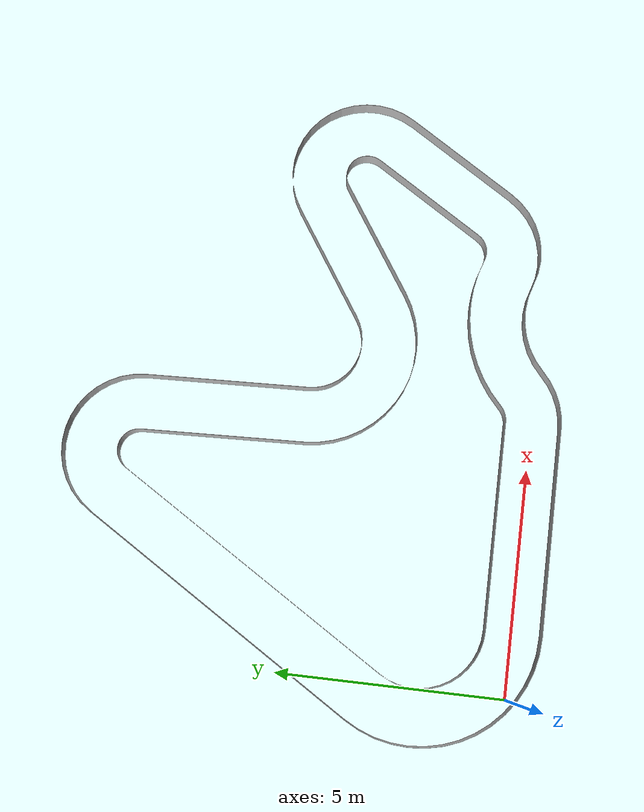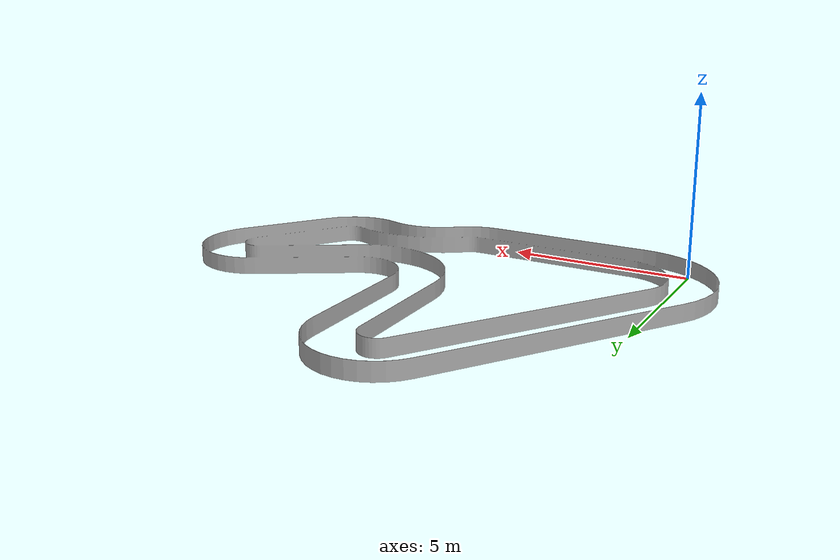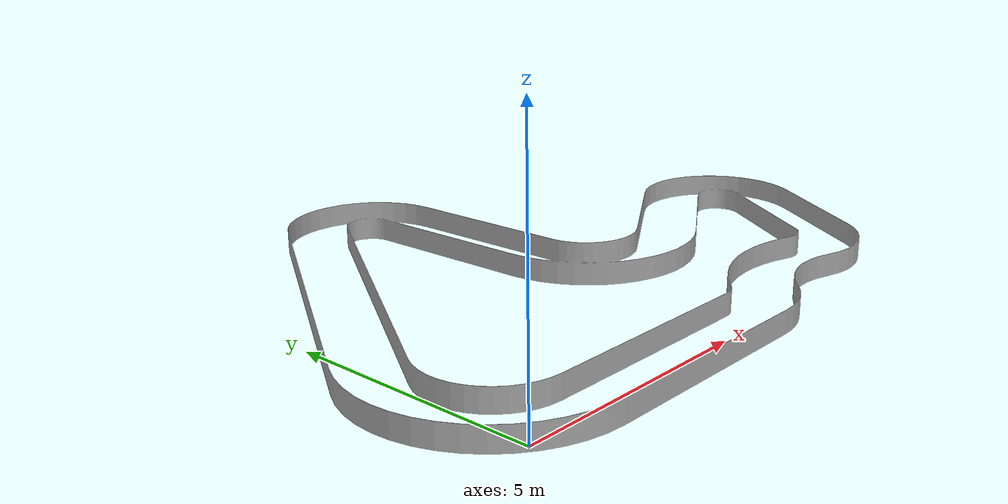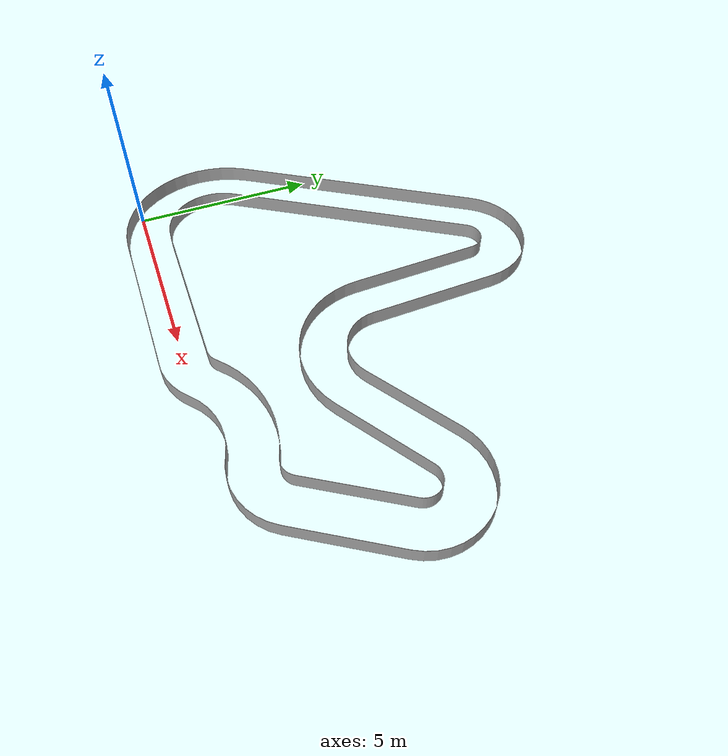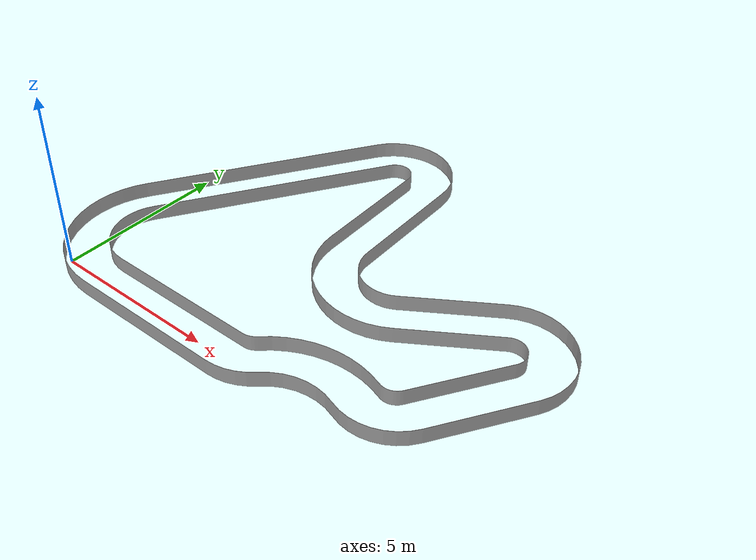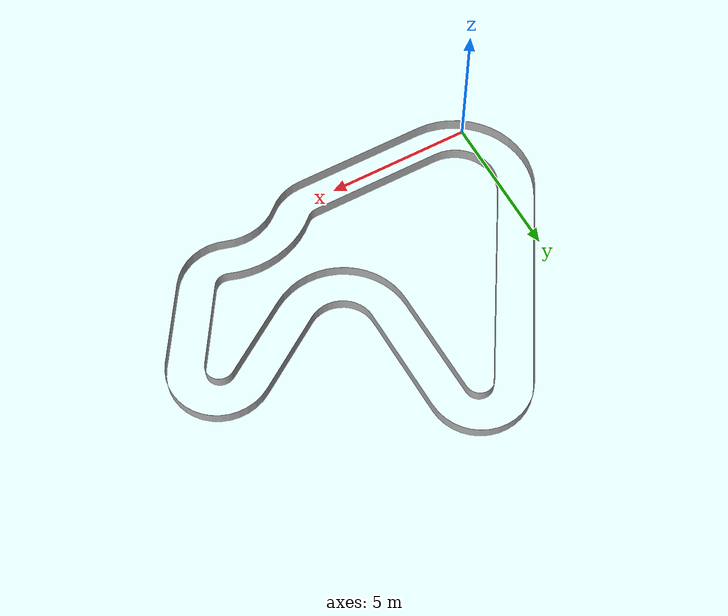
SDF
<?xml version='1.0'?>
<sdf version='1.4'>
  <model name="arroyo_track">
    <link name="link">
      <collision name="collision">
        <geometry>
          <mesh>
            <uri>model://racecar_description/meshes/arroyo_track.dae</uri>
          </mesh>
        </geometry>
      </collision>
      <visual name="visual">
        <geometry>
          <mesh>
            <uri>model://racecar_description/meshes/arroyo_track.dae</uri>
          </mesh>
        </geometry>
      </visual>
    </link>
    <static>1</static>
  </model>
</sdf>
